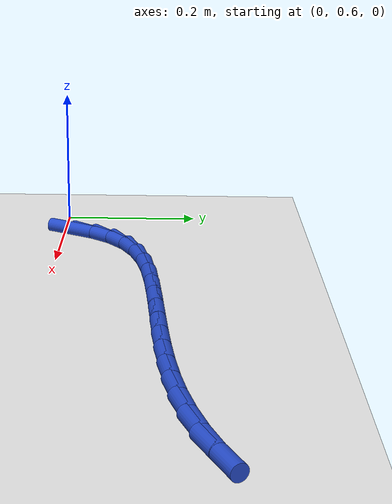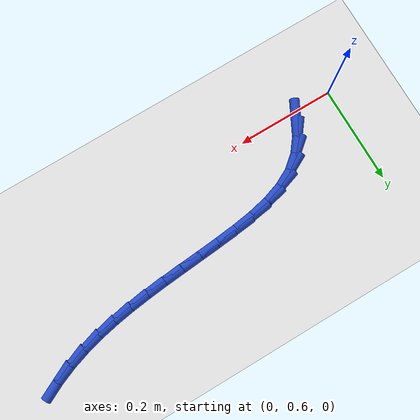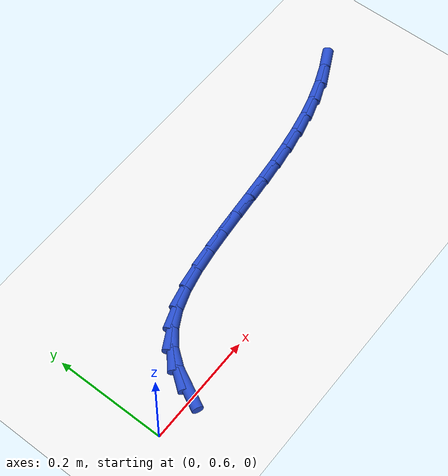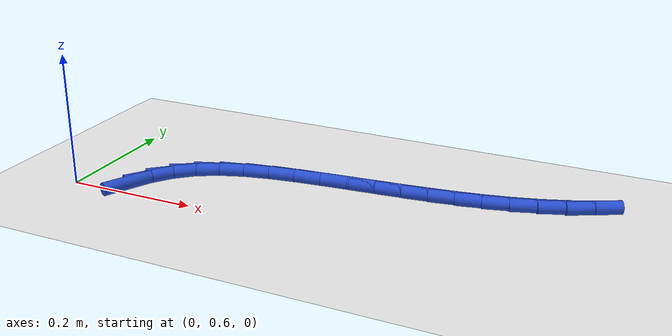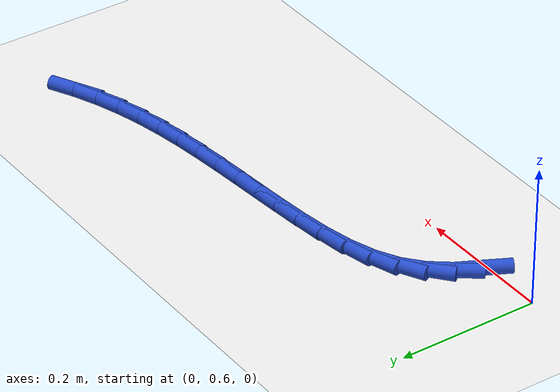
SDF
<sdf version="1.6">
 <world name="default">
  <model name="ground_plane">
   <static>1</static>
   <link name="link">
    <collision name="collision">
     <geometry><plane><normal>0 0 1</normal><size>100 100</size></plane></geometry>
     <surface><friction><ode><mu>100</mu><mu2>50</mu2></ode></friction></surface>
    </collision>
    <visual name="visual">
     <cast_shadows>0</cast_shadows>
     <geometry><plane><normal>0 0 1</normal><size>100 100</size></plane></geometry>
     <material>
      <script><uri>file://media/materials/scripts/gazebo.material</uri><name>Gazebo/WhiteGlow</name></script>
     </material>
    </visual>
   </link>
  </model>
  <model name="line">
   <link name="link_15">
    <pose>0.08586023064266884 0.6140491495374485 0.01 0 1.57 1.0919939815067272</pose>
    <collision name="collision">
     <geometry><cylinder><radius>0.01</radius><length>0.08</length></cylinder></geometry>
    </collision>
    <visual name="visual">
     <material>
      <script><name>Gazebo/Blue</name><uri>file://media/materials/scripts/gazebo.material</uri></script>
     </material>
     <geometry><cylinder><radius>0.01</radius><length>0.08</length></cylinder></geometry>
    </visual>
   </link>
   <link name="link_16">
    <pose>0.10258223963065338 0.6462632629333089 0.01 0 1.57 0.9139524919822724</pose>
    <collision name="collision">
     <geometry><cylinder><radius>0.01</radius><length>0.08</length></cylinder></geometry>
    </collision>
    <visual name="visual">
     <material>
      <script><name>Gazebo/Blue</name><uri>file://media/materials/scripts/gazebo.material</uri></script>
     </material>
     <geometry><cylinder><radius>0.01</radius><length>0.08</length></cylinder></geometry>
    </visual>
   </link>
   <link name="link_17">
    <pose>0.12395443571945916 0.673981204309838 0.01 0 1.57 0.7011252617028481</pose>
    <collision name="collision">
     <geometry><cylinder><radius>0.01</radius><length>0.08</length></cylinder></geometry>
    </collision>
    <visual name="visual">
     <material>
      <script><name>Gazebo/Blue</name><uri>file://media/materials/scripts/gazebo.material</uri></script>
     </material>
     <geometry><cylinder><radius>0.01</radius><length>0.08</length></cylinder></geometry>
    </visual>
   </link>
   <link name="link_18">
    <pose>0.15065780450031493 0.6965245563262074 0.01 0 1.57 0.48530061039437883</pose>
    <collision name="collision">
     <geometry><cylinder><radius>0.01</radius><length>0.08</length></cylinder></geometry>
    </collision>
    <visual name="visual">
     <material>
      <script><name>Gazebo/Blue</name><uri>file://media/materials/scripts/gazebo.material</uri></script>
     </material>
     <geometry><cylinder><radius>0.01</radius><length>0.08</length></cylinder></geometry>
    </visual>
   </link>
   <link name="link_19">
    <pose>0.18296155376172307 0.7135604817101712 0.01 0 1.57 0.3230330626207582</pose>
    <collision name="collision">
     <geometry><cylinder><radius>0.01</radius><length>0.08</length></cylinder></geometry>
    </collision>
    <visual name="visual">
     <material>
      <script><name>Gazebo/Blue</name><uri>file://media/materials/scripts/gazebo.material</uri></script>
     </material>
     <geometry><cylinder><radius>0.01</radius><length>0.08</length></cylinder></geometry>
    </visual>
   </link>
   <link name="link_20">
    <pose>0.21978633292603755 0.7258879062169596 0.01 0 1.57 0.21299831055828786</pose>
    <collision name="collision">
     <geometry><cylinder><radius>0.01</radius><length>0.08</length></cylinder></geometry>
    </collision>
    <visual name="visual">
     <material>
      <script><name>Gazebo/Blue</name><uri>file://media/materials/scripts/gazebo.material</uri></script>
     </material>
     <geometry><cylinder><radius>0.01</radius><length>0.08</length></cylinder></geometry>
    </visual>
   </link>
   <link name="link_21">
    <pose>0.2597771550120717 0.7345370804731506 0.01 0 1.57 0.1425880608667658</pose>
    <collision name="collision">
     <geometry><cylinder><radius>0.01</radius><length>0.08</length></cylinder></geometry>
    </collision>
    <visual name="visual">
     <material>
      <script><name>Gazebo/Blue</name><uri>file://media/materials/scripts/gazebo.material</uri></script>
     </material>
     <geometry><cylinder><radius>0.01</radius><length>0.08</length></cylinder></geometry>
    </visual>
   </link>
   <link name="link_22">
    <pose>0.301579033038639 0.7405382551053217 0.01 0 1.57 0.10335853625218103</pose>
    <collision name="collision">
     <geometry><cylinder><radius>0.01</radius><length>0.08</length></cylinder></geometry>
    </collision>
    <visual name="visual">
     <material>
      <script><name>Gazebo/Blue</name><uri>file://media/materials/scripts/gazebo.material</uri></script>
     </material>
     <geometry><cylinder><radius>0.01</radius><length>0.08</length></cylinder></geometry>
    </visual>
   </link>
   <link name="link_23">
    <pose>0.34383712811158723 0.7449216101934814 0.01 0 1.57 0.08753427483744719</pose>
    <collision name="collision">
     <geometry><cylinder><radius>0.01</radius><length>0.08</length></cylinder></geometry>
    </collision>
    <visual name="visual">
     <material>
      <script><name>Gazebo/Blue</name><uri>file://media/materials/scripts/gazebo.material</uri></script>
     </material>
     <geometry><cylinder><radius>0.01</radius><length>0.08</length></cylinder></geometry>
    </visual>
   </link>
   <link name="link_24">
    <pose>0.3854909745000385 0.748577090604662 0.01 0 1.57 0.08254679387309169</pose>
    <collision name="collision">
     <geometry><cylinder><radius>0.01</radius><length>0.08</length></cylinder></geometry>
    </collision>
    <visual name="visual">
     <material>
      <script><name>Gazebo/Blue</name><uri>file://media/materials/scripts/gazebo.material</uri></script>
     </material>
     <geometry><cylinder><radius>0.01</radius><length>0.08</length></cylinder></geometry>
    </visual>
   </link>
   <link name="link_25">
    <pose>0.42639056807646664 0.7519609101706646 0.01 0 1.57 0.08653233254181558</pose>
    <collision name="collision">
     <geometry><cylinder><radius>0.01</radius><length>0.08</length></cylinder></geometry>
    </collision>
    <visual name="visual">
     <material>
      <script><name>Gazebo/Blue</name><uri>file://media/materials/scripts/gazebo.material</uri></script>
     </material>
     <geometry><cylinder><radius>0.01</radius><length>0.08</length></cylinder></geometry>
    </visual>
   </link>
   <link name="link_26">
    <pose>0.46656138423578275 0.755445686759826 0.01 0 1.57 0.09995964827615168</pose>
    <collision name="collision">
     <geometry><cylinder><radius>0.01</radius><length>0.08</length></cylinder></geometry>
    </collision>
    <visual name="visual">
     <material>
      <script><name>Gazebo/Blue</name><uri>file://media/materials/scripts/gazebo.material</uri></script>
     </material>
     <geometry><cylinder><radius>0.01</radius><length>0.08</length></cylinder></geometry>
    </visual>
   </link>
   <link name="link_27">
    <pose>0.5060288983728978 0.7594040382404825 0.01 0 1.57 0.12323373551644948</pose>
    <collision name="collision">
     <geometry><cylinder><radius>0.01</radius><length>0.08</length></cylinder></geometry>
    </collision>
    <visual name="visual">
     <material>
      <script><name>Gazebo/Blue</name><uri>file://media/materials/scripts/gazebo.material</uri></script>
     </material>
     <geometry><cylinder><radius>0.01</radius><length>0.08</length></cylinder></geometry>
    </visual>
   </link>
   <link name="link_28">
    <pose>0.5448185858827226 0.7642085824809711 0.01 0 1.57 0.15664460560736038</pose>
    <collision name="collision">
     <geometry><cylinder><radius>0.01</radius><length>0.08</length></cylinder></geometry>
    </collision>
    <visual name="visual">
     <material>
      <script><name>Gazebo/Blue</name><uri>file://media/materials/scripts/gazebo.material</uri></script>
     </material>
     <geometry><cylinder><radius>0.01</radius><length>0.08</length></cylinder></geometry>
    </visual>
   </link>
   <link name="link_29">
    <pose>0.582955922160168 0.7702319373496286 0.01 0 1.57 0.2002825979933182</pose>
    <collision name="collision">
     <geometry><cylinder><radius>0.01</radius><length>0.08</length></cylinder></geometry>
    </collision>
    <visual name="visual">
     <material>
      <script><name>Gazebo/Blue</name><uri>file://media/materials/scripts/gazebo.material</uri></script>
     </material>
     <geometry><cylinder><radius>0.01</radius><length>0.08</length></cylinder></geometry>
    </visual>
   </link>
   <link name="link_30">
    <pose>0.6204663826001451 0.7778467207147917 0.01 0 1.57 0.25392323454841886</pose>
    <collision name="collision">
     <geometry><cylinder><radius>0.01</radius><length>0.08</length></cylinder></geometry>
    </collision>
    <visual name="visual">
     <material>
      <script><name>Gazebo/Blue</name><uri>file://media/materials/scripts/gazebo.material</uri></script>
     </material>
     <geometry><cylinder><radius>0.01</radius><length>0.08</length></cylinder></geometry>
    </visual>
   </link>
   <link name="link_31">
    <pose>0.657375442597565 0.7874255504447971 0.01 0 1.57 0.3168988077317452</pose>
    <collision name="collision">
     <geometry><cylinder><radius>0.01</radius><length>0.08</length></cylinder></geometry>
    </collision>
    <visual name="visual">
     <material>
      <script><name>Gazebo/Blue</name><uri>file://media/materials/scripts/gazebo.material</uri></script>
     </material>
     <geometry><cylinder><radius>0.01</radius><length>0.08</length></cylinder></geometry>
    </visual>
   </link>
   <link name="link_32">
    <pose>0.6937085775473385 0.7993410444079817 0.01 0 1.57 0.38799320603928406</pose>
    <collision name="collision">
     <geometry><cylinder><radius>0.01</radius><length>0.08</length></cylinder></geometry>
    </collision>
    <visual name="visual">
     <material>
      <script><name>Gazebo/Blue</name><uri>file://media/materials/scripts/gazebo.material</uri></script>
     </material>
     <geometry><cylinder><radius>0.01</radius><length>0.08</length></cylinder></geometry>
    </visual>
   </link>
   <link name="link_33">
    <pose>0.7294912628443764 0.813965820472682 0.01 0 1.57 0.4654118026864059</pose>
    <collision name="collision">
     <geometry><cylinder><radius>0.01</radius><length>0.08</length></cylinder></geometry>
    </collision>
    <visual name="visual">
     <material>
      <script><name>Gazebo/Blue</name><uri>file://media/materials/scripts/gazebo.material</uri></script>
     </material>
     <geometry><cylinder><radius>0.01</radius><length>0.08</length></cylinder></geometry>
    </visual>
   </link>
  </model>
 </world>
</sdf>
